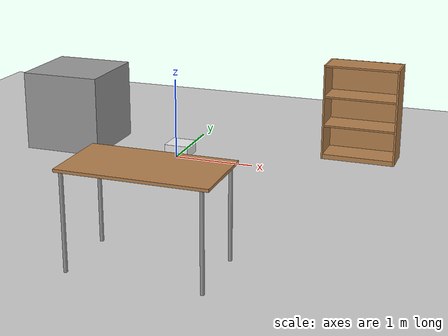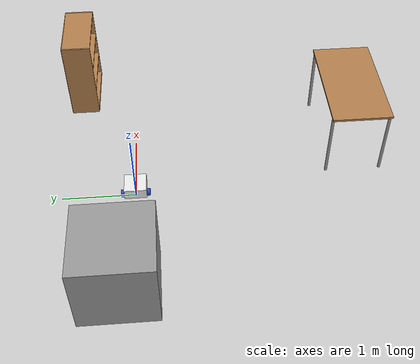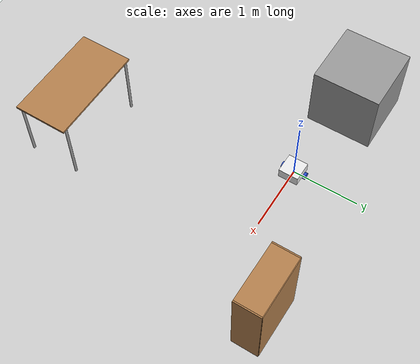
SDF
<sdf version="1.7">
 <world name="default">
  <light name="sun" type="directional">
   <pose>0 0 10 0 -0 0</pose>
   <diffuse>0.8 0.8 0.8 1</diffuse>
   <specular>0.2 0.2 0.2 1</specular>
   <attenuation>
    <range>1000</range>
    <constant>0.9</constant>
    <linear>0.01</linear>
    <quadratic>0.001</quadratic>
   </attenuation>
   <direction>-0.5 0.1 -0.9</direction>
   <spot><inner_angle>0</inner_angle><outer_angle>0</outer_angle><falloff>0</falloff></spot>
  </light>
  <model name="ground_plane">
   <static>1</static>
   <link name="link">
    <collision name="collision">
     <geometry><plane><normal>0 0 1</normal><size>100 100</size></plane></geometry>
     <surface>
      <contact><collide_bitmask>65535</collide_bitmask></contact>
      <friction><ode><mu>100</mu><mu2>50</mu2></ode></friction>
     </surface>
    </collision>
    <visual name="visual">
     <cast_shadows>0</cast_shadows>
     <geometry><plane><normal>0 0 1</normal><size>100 100</size></plane></geometry>
     <material>
      <script><uri>file://media/materials/scripts/gazebo.material</uri><name>Gazebo/Grey</name></script>
     </material>
    </visual>
   </link>
  </model>
  <gravity>0 0 -9.8</gravity>
  <magnetic_field>6e-06 2.3e-05 -4.2e-05</magnetic_field>
  <atmosphere type="adiabatic"/>
  <physics type="ode">
   <max_step_size>0.001</max_step_size>
   <real_time_factor>1</real_time_factor>
   <real_time_update_rate>1000</real_time_update_rate>
  </physics>
  <scene><ambient>0.4 0.4 0.4 1</ambient><background>0.7 0.7 0.7 1</background><shadows>1</shadows></scene>
  <audio><device>default</device></audio>
  <spherical_coordinates>
   <surface_model>EARTH_WGS84</surface_model>
   <latitude_deg>0</latitude_deg>
   <longitude_deg>0</longitude_deg>
   <elevation>0</elevation>
   <heading_deg>0</heading_deg>
  </spherical_coordinates>
  <model name="my_bot">
   <link name="base_link">
    <inertial>
     <pose>0.065 0 0.0625 0 -0 0</pose>
     <mass>0.6</mass>
     <inertia>
      <ixx>0.00525625</ixx>
      <ixy>0</ixy>
      <ixz>0.0005625</ixz>
      <iyy>0.00593125</iyy>
      <iyz>0</iyz>
      <izz>0.008275</izz>
     </inertia>
    </inertial>
    <collision name="base_link_fixed_joint_lump__chassis_collision">
     <pose>0.05 0 0.075 0 -0 0</pose>
     <geometry><box><size>0.3 0.3 0.15</size></box></geometry>
    </collision>
    <collision name="base_link_fixed_joint_lump__caster_wheel_collision_1">
     <pose>0.14 0 0 0 -0 0</pose>
     <geometry><sphere><radius>0.05</radius></sphere></geometry>
     <surface><friction><ode><mu>0.001</mu><mu2>0.001</mu2></ode></friction></surface>
    </collision>
    <visual name="base_link_fixed_joint_lump__chassis_visual">
     <pose>0.05 0 0.075 0 -0 0</pose>
     <geometry><box><size>0.3 0.3 0.15</size></box></geometry>
     <material>
      <script><name>Gazebo/White</name><uri>file://media/materials/scripts/gazebo.material</uri></script>
     </material>
    </visual>
    <visual name="base_link_fixed_joint_lump__caster_wheel_visual_1">
     <pose>0.14 0 0 0 -0 0</pose>
     <geometry><sphere><radius>0.05</radius></sphere></geometry>
     <material>
      <script><name>Gazebo/Black</name><uri>file://media/materials/scripts/gazebo.material</uri></script>
     </material>
    </visual>
   </link>
   <joint name="left_wheel_joint" type="revolute">
    <pose relative_to="base_link">0 0.175 0 -1.5708 0 0</pose>
    <parent>base_link</parent>
    <child>left_wheel</child>
    <axis>
     <xyz>0 0 1</xyz>
     <limit><lower>-1e+16</lower><upper>1e+16</upper></limit>
     <dynamics><spring_reference>0</spring_reference><spring_stiffness>0</spring_stiffness></dynamics>
    </axis>
   </joint>
   <link name="left_wheel">
    <pose relative_to="left_wheel_joint">0 0 0 0 -0 0</pose>
    <inertial>
     <mass>0.1</mass>
     <inertia>
      <ixx>7.58333e-05</ixx>
      <ixy>0</ixy>
      <ixz>0</ixz>
      <iyy>7.58333e-05</iyy>
      <iyz>0</iyz>
      <izz>0.000125</izz>
     </inertia>
    </inertial>
    <collision name="left_wheel_collision">
     <geometry><cylinder><length>0.04</length><radius>0.05</radius></cylinder></geometry>
    </collision>
    <visual name="left_wheel_visual">
     <geometry><cylinder><length>0.04</length><radius>0.05</radius></cylinder></geometry>
     <material>
      <script><name>Gazebo/Blue</name><uri>file://media/materials/scripts/gazebo.material</uri></script>
     </material>
    </visual>
   </link>
   <joint name="right_wheel_joint" type="revolute">
    <pose relative_to="base_link">0 -0.175 0 1.5708 -0 0</pose>
    <parent>base_link</parent>
    <child>right_wheel</child>
    <axis>
     <xyz>0 0 -1</xyz>
     <limit><lower>-1e+16</lower><upper>1e+16</upper></limit>
     <dynamics><spring_reference>0</spring_reference><spring_stiffness>0</spring_stiffness></dynamics>
    </axis>
   </joint>
   <link name="right_wheel">
    <pose relative_to="right_wheel_joint">0 0 0 0 -0 0</pose>
    <inertial>
     <mass>0.1</mass>
     <inertia>
      <ixx>7.58333e-05</ixx>
      <ixy>0</ixy>
      <ixz>0</ixz>
      <iyy>7.58333e-05</iyy>
      <iyz>0</iyz>
      <izz>0.000125</izz>
     </inertia>
    </inertial>
    <collision name="right_wheel_collision">
     <geometry><cylinder><length>0.04</length><radius>0.05</radius></cylinder></geometry>
    </collision>
    <visual name="right_wheel_visual">
     <geometry><cylinder><length>0.04</length><radius>0.05</radius></cylinder></geometry>
     <material>
      <script><name>Gazebo/Blue</name><uri>file://media/materials/scripts/gazebo.material</uri></script>
     </material>
    </visual>
   </link>
   <static>0</static>
   <plugin name="diff_drive" filename="libgazebo_ros_diff_drive.so">
    <left_joint>left_wheel_joint</left_joint>
    <right_joint>right_wheel_joint</right_joint>
    <wheel_separation>0.35</wheel_separation>
    <wheel_diameter>0.1</wheel_diameter>
    <max_wheel_torque>200</max_wheel_torque>
    <max_wheel_acceleration>10.0</max_wheel_acceleration>
    <odometry_frame>odom</odometry_frame>
    <robot_base_frame>base_link</robot_base_frame>
    <publish_odom>1</publish_odom>
    <publish_odom_tf>1</publish_odom_tf>
    <publish_wheel_tf>1</publish_wheel_tf>
   </plugin>
   <pose>0.002897 1e-05 0.05 0 1.5e-05 5.1e-05</pose>
  </model>
  <model name="bookshelf">
   <static>1</static>
   <link name="link">
    <inertial><mass>1</mass></inertial>
    <collision name="back">
     <pose>0 0.005 0.6 0 -0 0</pose>
     <geometry><box><size>0.9 0.01 1.2</size></box></geometry>
    </collision>
    <visual name="visual1">
     <pose>0 0.005 0.6 0 -0 0</pose>
     <geometry><box><size>0.9 0.01 1.2</size></box></geometry>
     <material>
      <script><uri>file://media/materials/scripts/gazebo.material</uri><name>Gazebo/Wood</name></script>
     </material>
    </visual>
    <collision name="left_side">
     <pose>0.45 -0.195 0.6 0 -0 0</pose>
     <geometry><box><size>0.02 0.4 1.2</size></box></geometry>
    </collision>
    <visual name="visual2">
     <pose>0.45 -0.195 0.6 0 -0 0</pose>
     <geometry><box><size>0.02 0.4 1.2</size></box></geometry>
     <material>
      <script><uri>file://media/materials/scripts/gazebo.material</uri><name>Gazebo/Wood</name></script>
     </material>
    </visual>
    <collision name="right_side">
     <pose>-0.45 -0.195 0.6 0 -0 0</pose>
     <geometry><box><size>0.02 0.4 1.2</size></box></geometry>
    </collision>
    <visual name="visual3">
     <pose>-0.45 -0.195 0.6 0 -0 0</pose>
     <geometry><box><size>0.02 0.4 1.2</size></box></geometry>
     <material>
      <script><uri>file://media/materials/scripts/gazebo.material</uri><name>Gazebo/Wood</name></script>
     </material>
    </visual>
    <collision name="bottom">
     <pose>0 -0.195 0.03 0 -0 0</pose>
     <geometry><box><size>0.88 0.4 0.06</size></box></geometry>
    </collision>
    <visual name="visual4">
     <pose>0 -0.195 0.03 0 -0 0</pose>
     <geometry><box><size>0.88 0.4 0.06</size></box></geometry>
     <material>
      <script><uri>file://media/materials/scripts/gazebo.material</uri><name>Gazebo/Wood</name></script>
     </material>
    </visual>
    <collision name="top">
     <pose>0 -0.195 1.19 0 -0 0</pose>
     <geometry><box><size>0.88 0.4 0.02</size></box></geometry>
    </collision>
    <visual name="visual5">
     <pose>0 -0.195 1.19 0 -0 0</pose>
     <geometry><box><size>0.88 0.4 0.02</size></box></geometry>
     <material>
      <script><uri>file://media/materials/scripts/gazebo.material</uri><name>Gazebo/Wood</name></script>
     </material>
    </visual>
    <collision name="low_shelf">
     <pose>0 -0.195 0.43 0 -0 0</pose>
     <geometry><box><size>0.88 0.4 0.02</size></box></geometry>
    </collision>
    <visual name="visual6">
     <pose>0 -0.195 0.43 0 -0 0</pose>
     <geometry><box><size>0.88 0.4 0.02</size></box></geometry>
     <material>
      <script><uri>file://media/materials/scripts/gazebo.material</uri><name>Gazebo/Wood</name></script>
     </material>
    </visual>
    <collision name="high_shelf">
     <pose>0 -0.195 0.8 0 -0 0</pose>
     <geometry><box><size>0.88 0.4 0.02</size></box></geometry>
    </collision>
    <visual name="visual7">
     <pose>0 -0.195 0.8 0 -0 0</pose>
     <geometry><box><size>0.88 0.4 0.02</size></box></geometry>
     <material>
      <script><uri>file://media/materials/scripts/gazebo.material</uri><name>Gazebo/Wood</name></script>
     </material>
    </visual>
   </link>
   <pose>2.18905 0.958981 0 0 -0 0</pose>
  </model>
  <model name="table">
   <static>1</static>
   <link name="link">
    <collision name="surface">
     <pose>0 0 1 0 -0 0</pose>
     <geometry><box><size>1.5 0.8 0.03</size></box></geometry>
     <surface><friction><ode><mu>0.6</mu><mu2>0.6</mu2></ode></friction></surface>
    </collision>
    <visual name="visual1">
     <pose>0 0 1 0 -0 0</pose>
     <geometry><box><size>1.5 0.8 0.03</size></box></geometry>
     <material>
      <script><uri>file://media/materials/scripts/gazebo.material</uri><name>Gazebo/Wood</name></script>
     </material>
    </visual>
    <collision name="front_left_leg">
     <pose>0.68 0.38 0.5 0 -0 0</pose>
     <geometry><cylinder><radius>0.02</radius><length>1</length></cylinder></geometry>
    </collision>
    <visual name="front_left_leg">
     <pose>0.68 0.38 0.5 0 -0 0</pose>
     <geometry><cylinder><radius>0.02</radius><length>1</length></cylinder></geometry>
     <material>
      <script><uri>file://media/materials/scripts/gazebo.material</uri><name>Gazebo/Grey</name></script>
     </material>
    </visual>
    <collision name="front_right_leg">
     <pose>0.68 -0.38 0.5 0 -0 0</pose>
     <geometry><cylinder><radius>0.02</radius><length>1</length></cylinder></geometry>
    </collision>
    <visual name="front_right_leg">
     <pose>0.68 -0.38 0.5 0 -0 0</pose>
     <geometry><cylinder><radius>0.02</radius><length>1</length></cylinder></geometry>
     <material>
      <script><uri>file://media/materials/scripts/gazebo.material</uri><name>Gazebo/Grey</name></script>
     </material>
    </visual>
    <collision name="back_right_leg">
     <pose>-0.68 -0.38 0.5 0 -0 0</pose>
     <geometry><cylinder><radius>0.02</radius><length>1</length></cylinder></geometry>
    </collision>
    <visual name="back_right_leg">
     <pose>-0.68 -0.38 0.5 0 -0 0</pose>
     <geometry><cylinder><radius>0.02</radius><length>1</length></cylinder></geometry>
     <material>
      <script><uri>file://media/materials/scripts/gazebo.material</uri><name>Gazebo/Grey</name></script>
     </material>
    </visual>
    <collision name="back_left_leg">
     <pose>-0.68 0.38 0.5 0 -0 0</pose>
     <geometry><cylinder><radius>0.02</radius><length>1</length></cylinder></geometry>
    </collision>
    <visual name="back_left_leg">
     <pose>-0.68 0.38 0.5 0 -0 0</pose>
     <geometry><cylinder><radius>0.02</radius><length>1</length></cylinder></geometry>
     <material>
      <script><uri>file://media/materials/scripts/gazebo.material</uri><name>Gazebo/Grey</name></script>
     </material>
    </visual>
   </link>
   <pose>0.947442 -3.03925 0 0 -0 0</pose>
  </model>
  <model name="unit_box">
   <link name="link">
    <inertial>
     <mass>1</mass>
     <inertia>
      <ixx>0.166667</ixx>
      <ixy>0</ixy>
      <ixz>0</ixz>
      <iyy>0.166667</iyy>
      <iyz>0</iyz>
      <izz>0.166667</izz>
     </inertia>
    </inertial>
    <visual name="visual">
     <geometry><box><size>1 1 1</size></box></geometry>
     <material>
      <script><name>Gazebo/Grey</name><uri>file://media/materials/scripts/gazebo.material</uri></script>
      <shader type="pixel"/>
     </material>
    </visual>
    <collision name="collision">
     <geometry><box><size>1 1 1</size></box></geometry>
     <surface>
      <friction>
       <ode><mu>1</mu><mu2>1</mu2><fdir1>0 0 0</fdir1><slip1>0</slip1><slip2>0</slip2></ode>
       <torsional>
        <coefficient>1</coefficient>
        <patch_radius>0</patch_radius>
        <surface_radius>0</surface_radius>
        <use_patch_radius>1</use_patch_radius>
        <ode><slip>0</slip></ode>
       </torsional>
      </friction>
      <bounce><restitution_coefficient>0</restitution_coefficient><threshold>1e+06</threshold></bounce>
      <contact>
       <collide_without_contact>0</collide_without_contact>
       <collide_without_contact_bitmask>1</collide_without_contact_bitmask>
       <collide_bitmask>1</collide_bitmask>
       <ode>
        <soft_cfm>0</soft_cfm>
        <soft_erp>0.2</soft_erp>
        <kp>1e+13</kp>
        <kd>1</kd>
        <max_vel>0.01</max_vel>
        <min_depth>0</min_depth>
       </ode>
       <bullet>
        <split_impulse>1</split_impulse>
        <split_impulse_penetration_threshold>-0.01</split_impulse_penetration_threshold>
        <soft_cfm>0</soft_cfm>
        <soft_erp>0.2</soft_erp>
        <kp>1e+13</kp>
        <kd>1</kd>
       </bullet>
      </contact>
     </surface>
    </collision>
   </link>
   <static>0</static>
   <pose>-1.45435 0.193448 0.499995 -1e-05 0 0</pose>
  </model>
 </world>
</sdf>
